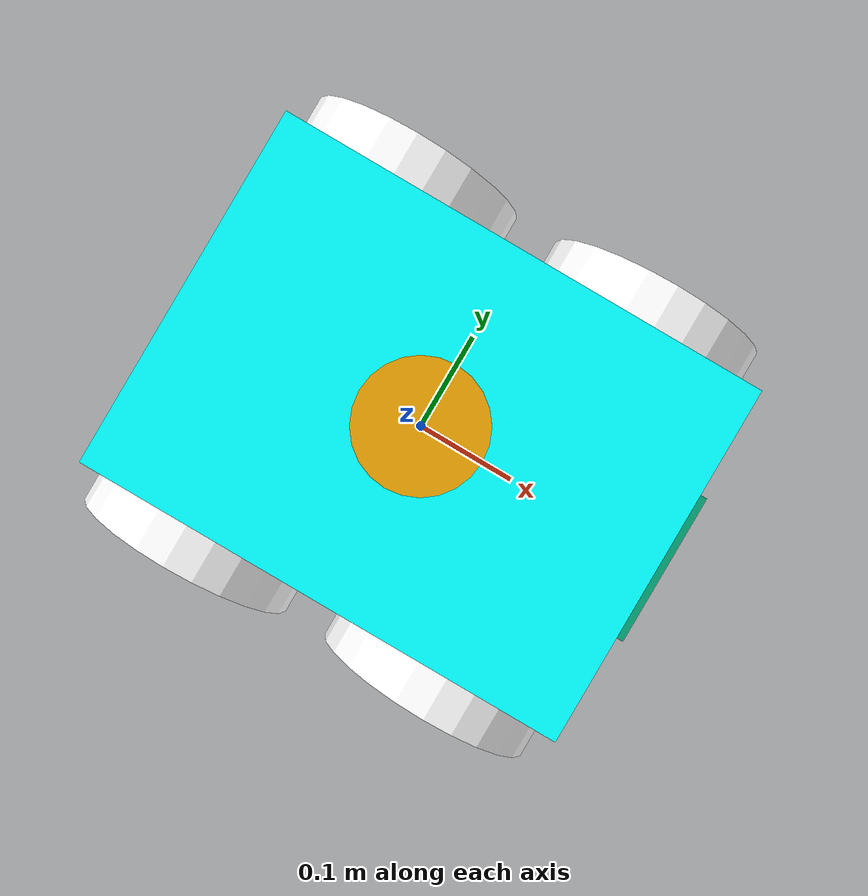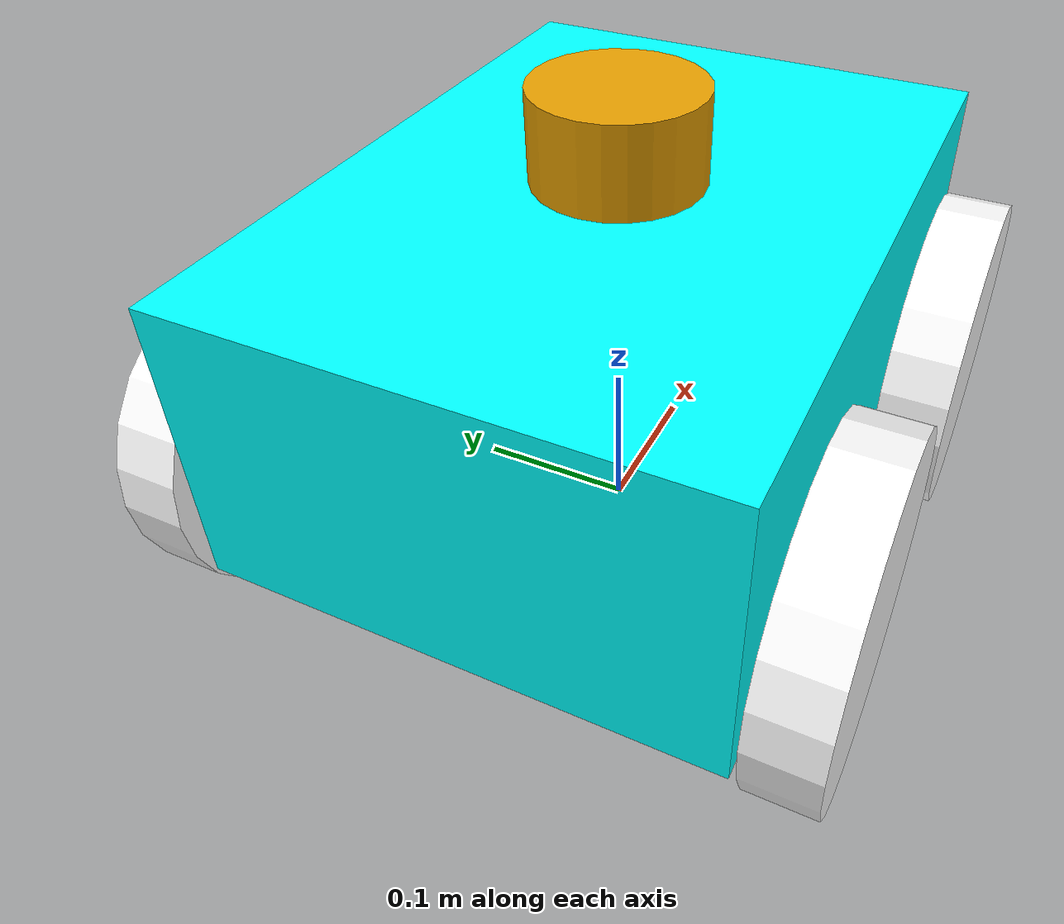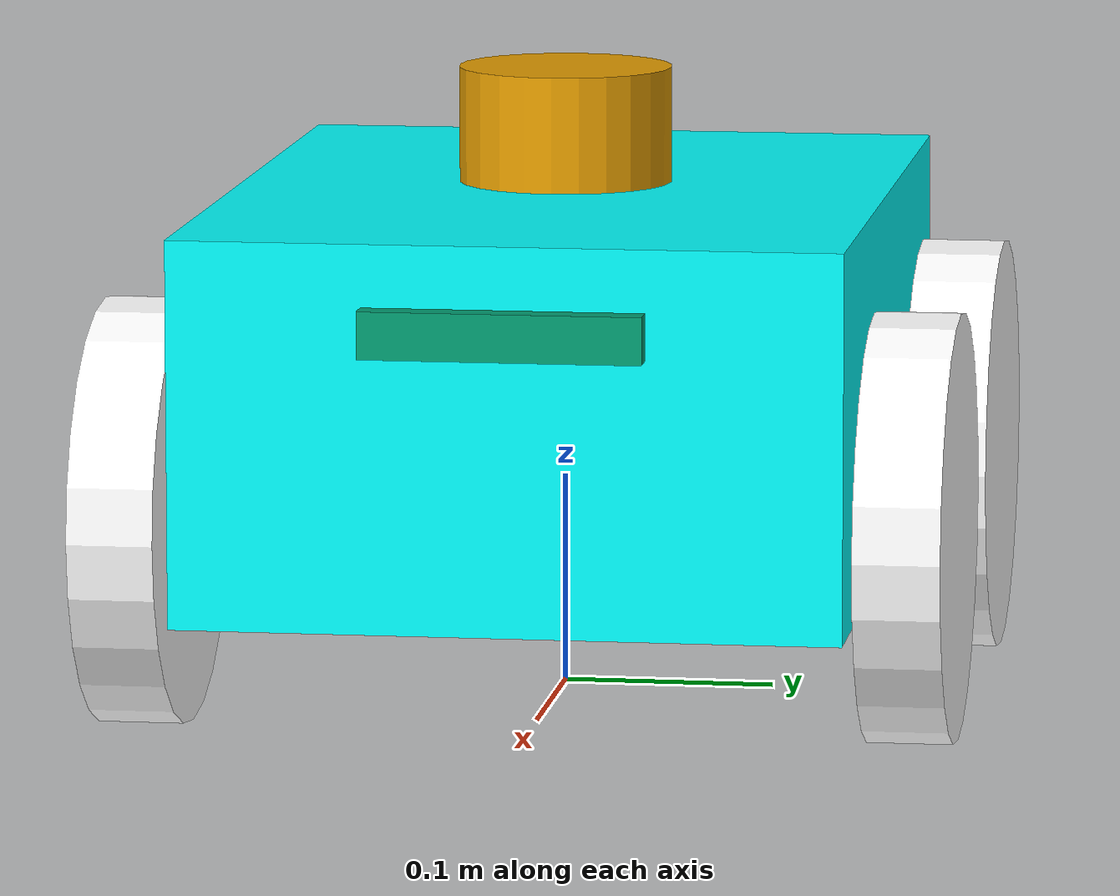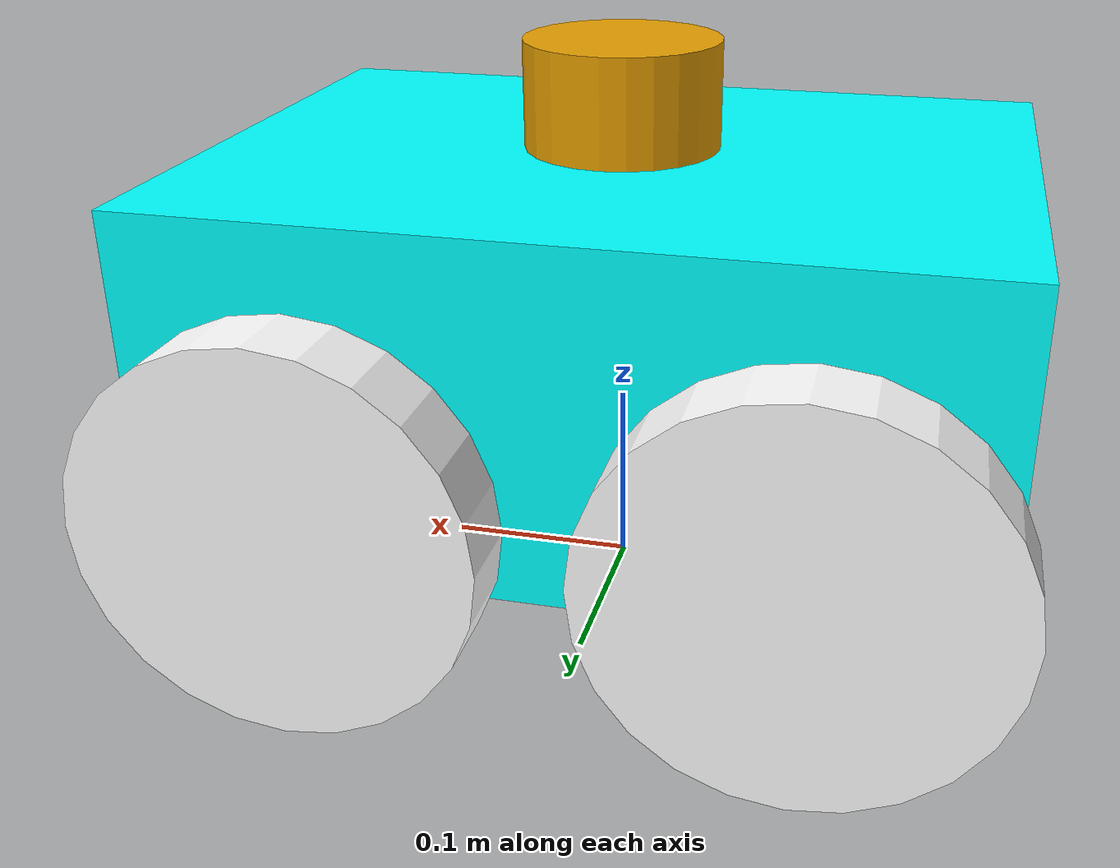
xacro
<?xml version="1.0"?>
<robot xmlns:xacro="http://ros.org/wiki/xacro" name="junki_acker">

    <xacro:include filename="robot_core.xacro" />
    <xacro:include filename="laser.xacro" />
    <xacro:include filename="gazebo_control.xacro" />
    <xacro:include filename="imu.xacro" />
    <xacro:include filename="camera.xacro" />

</robot>

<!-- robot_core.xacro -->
<robot xmlns:xacro="http://www.ros.org/wiki/xacro">

  <!-- Robotaren balio konstanteak -->
  <xacro:property name="oinarri_zabalera" value="0.31"/>
  <xacro:property name="oinarri_luzera" value="0.42"/>
  <xacro:property name="oinarri_altuera" value="0.18"/>

  <xacro:property name="gurpil_erradioa" value="0.10"/>
  <xacro:property name="gurpil_zabalera" value="0.04"/>
  <xacro:property name="wheel_ygap" value="0.025"/>
  <xacro:property name="wheel_zoff" value="0.05"/>
  <xacro:property name="wheel_xoff" value="0.12"/>

  <xacro:property name="gurpil_marruskadura" value="0.8"/>

  <!-- Definitu propietate inertzialak  -->
  <xacro:macro name="kutxa_inerzia" params="m w h d">
    <inertial>
      <origin xyz="0 0 0" rpy="${pi/2} 0 ${pi/2}"/>
      <mass value="${m}"/>
      <inertia ixx="${(m/12) * (h*h + d*d)}" ixy="0.0" ixz="0.0" iyy="${(m/12) * (w*w + d*d)}" iyz="0.0" izz="${(m/12) * (w*w + h*h)}"/>
    </inertial>
  </xacro:macro>

  <xacro:macro name="zilindro_inertzia" params="m r h">
    <inertial>
      <origin xyz="0 0 0" rpy="${pi/2} 0 0" />
      <mass value="${m}"/>
      <inertia ixx="${(m/12) * (3*r*r + h*h)}" ixy = "0" ixz = "0" iyy="${(m/12) * (3*r*r + h*h)}" iyz = "0" izz="${(m/2) * (r*r)}"/>
    </inertial>
  </xacro:macro>

  <!-- Robotaren basea -->
  <link name="base_link">
    <visual>
      <geometry>
        <box size="${oinarri_luzera} ${oinarri_zabalera} ${oinarri_altuera}"/>
      </geometry>
      <material name="Cyan">
        <color rgba="0 1.0 1.0 1.0"/>
      </material>
    </visual>
    <collision>
      <geometry>
        <box size="${oinarri_luzera} ${oinarri_zabalera} ${oinarri_altuera}"/>
      </geometry>
    </collision>

    <xacro:kutxa_inerzia m="15" w="${oinarri_zabalera}" d="${oinarri_luzera}" h="${oinarri_altuera}"/>
  </link>

  <!-- Robotaren Footprinta (itzala) -->
  <link name="base_footprint"/>

  <joint name="base_joint" type="fixed">
    <parent link="base_footprint"/>
    <child link="base_link"/>
    <origin xyz="0.0 0.0 ${(gurpil_erradioa+wheel_zoff)}" rpy="0 0 0"/>
  </joint>

  <!-- Atzeko gurpilak -->
  <!-- Ez dira ackermanak -->
  <xacro:macro name="Atzeko_gurpilak" params="aurrizkia x_norantza y_norantza">
    <link name="${aurrizkia}_link">
      <visual>
        <origin xyz="0 0 0" rpy="${pi/2} 0 0"/>
        <geometry>
            <cylinder radius="${gurpil_erradioa}" length="${gurpil_zabalera}"/>
        </geometry>
        <material name="txuria">
          <color rgba="1 1 1 1"/>
        </material>
      </visual>

      <collision>
        <origin xyz="0 0 0" rpy="${pi/2} 0 0"/>
        <geometry>
          <cylinder radius="${gurpil_erradioa}" length="${gurpil_zabalera}"/>
        </geometry>
      </collision>

      <xacro:zilindro_inertzia m="0.5" r="${gurpil_erradioa}" h="${gurpil_zabalera}"/>
    </link>
    <joint name="${aurrizkia}_joint" type="continuous">
      <parent link="base_link"/>
      <child link="${aurrizkia}_link"/>
      <origin xyz="${x_norantza*wheel_xoff} ${y_norantza*(oinarri_zabalera/2+wheel_ygap)} ${-wheel_zoff}" rpy="0 0 0"/>
      <axis xyz="0 1 0"/>
    </joint>
  </xacro:macro>

  <xacro:Atzeko_gurpilak aurrizkia="atzekoezk_gurp" x_norantza="-1" y_norantza="1" />
  <xacro:Atzeko_gurpilak aurrizkia="atzekoesk_gurp" x_norantza="-1" y_norantza="-1" />

  <!-- Aurreko gurpilak -->
  <!-- Ackermann-ak-->
  <xacro:macro name="Aurreko_gurpila" params="aurrizkia2 x_norantza2 y_norantza2">
    <link name="${aurrizkia2}_link">
      <visual>
        <origin xyz="0 0 0" rpy="${pi/2} 0 0"/>
        <geometry>
            <cylinder radius="${gurpil_erradioa}" length="${gurpil_zabalera}"/>
        </geometry>
        <material name="txuria">
          <color rgba="1 1 1 1"/>
        </material>
      </visual>

      <collision>
        <origin xyz="0 0 0" rpy="${pi/2} 0 0"/>
        <geometry>
          <cylinder radius="${gurpil_erradioa}" length="${gurpil_zabalera}"/>
        </geometry>
      </collision>

      <xacro:zilindro_inertzia m="0.5" r="${gurpil_erradioa}" h="${gurpil_zabalera}"/>
    </link>

  </xacro:macro>

  <xacro:Aurreko_gurpila aurrizkia2="aurrekoezk_gurp" x_norantza2="1" y_norantza2="1" />
  <xacro:Aurreko_gurpila aurrizkia2="aurrekoesk_gurp" x_norantza2="1" y_norantza2="-1" />

  <joint name="aurrekoezk_gurp_joint" type="continuous">
    <parent link="aurrekoezk_gurp_steer"/>
    <child link="aurrekoezk_gurp_link"/>
    <origin xyz="0 0 0" rpy="0 0 0"/>
    <axis xyz="0 1 0"/>
  </joint>
  <joint name="aurrekoesk_gurp_joint" type="continuous">
    <parent link="aurrekoesk_gurp_steer"/>
    <child link="aurrekoesk_gurp_link"/>
    <origin xyz="0 0 0" rpy="0 0 0"/>
    <axis xyz="0 1 0"/>
  </joint>

  <link name="aurrekoezk_gurp_steer">
    <visual>
      <geometry>
        <cylinder length="0.01" radius="0.01"/>
      </geometry>
      <material name="black">
        <color rgba="0 0 0 1"/>
      </material>
    </visual>
    <collision>
      <geometry>
        <cylinder length="0.01" radius="0.01"/>
      </geometry>
    </collision>
    <inertial>
      <mass value="0.1"/>
      <inertia ixx="5.1458e-5" iyy="5.1458e-5" izz="6.125e-5"
               ixy="0" ixz="0" iyz="0"/>
    </inertial>
  </link>

  <link name="aurrekoesk_gurp_steer">
    <visual>
      <geometry>
        <cylinder length="0.01" radius="0.01"/>
      </geometry>
      <material name="black">
        <color rgba="0 0 0 1"/>
      </material>
    </visual>
    <collision>
      <geometry>
        <cylinder length="0.01" radius="0.01"/>
      </geometry>
    </collision>
    <inertial>
      <mass value="0.1"/>
      <inertia ixx="5.1458e-5" iyy="5.1458e-5" izz="6.125e-5"
               ixy="0" ixz="0" iyz="0"/>
    </inertial>
  </link>

  <joint name="aurrekoezk_gurp_steer_joint" type="revolute">
    <limit lower="-1" upper="1" effort="1" velocity="5"/>
    <axis xyz="0 0 1"/>
    <parent link="base_link"/>
    <child link="aurrekoezk_gurp_steer"/>
    <origin xyz="${wheel_xoff} ${(oinarri_zabalera/2+wheel_ygap)} ${-wheel_zoff}" rpy="0 0 0"/>
  </joint>

  <joint name="aurrekoesk_gurp_steer_joint" type="revolute">
    <limit lower="-1" upper="1" effort="1" velocity="5"/>
    <axis xyz="0 0 1"/>
    <parent link="base_link"/>
    <child link="aurrekoesk_gurp_steer"/>
    <origin xyz="${wheel_xoff} ${-1*(oinarri_zabalera/2+wheel_ygap)} ${-wheel_zoff}" rpy="0 0 0"/>
  </joint>

</robot>

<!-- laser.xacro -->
<robot xmlns:xacro="http://www.ros.org/wiki/xacro">

    <link name="lidar_link">
        <inertial>
            <origin xyz="0 0 0" rpy="0 0 0"/>
            <mass value="0.125"/>
            <inertia ixx="0.001"  ixy="0"  ixz="0" iyy="0.001" iyz="0" izz="0.001" />
        </inertial>

        <collision>
            <origin xyz="0 0 0" rpy="0 0 0"/>
            <geometry>
            <cylinder radius="0.0508" length="0.055"/>
            </geometry>
        </collision>

        <visual>
            <origin xyz="0 0 0" rpy="0 0 0"/>
            <geometry>
            <cylinder radius="0.0508" length="0.055"/>
            </geometry>
        </visual>
    </link>

    <joint name="lidar_joint" type="fixed">
        <parent link="base_link"/>
        <child link="lidar_link"/>
        <origin xyz="0 0 0.12" rpy="0 0 0"/>
    </joint>

    <gazebo reference="lidar_link">
        <sensor name="lidar" type="ray">
            <always_on>true</always_on>
            <visualize>false</visualize>
            <update_rate>3</update_rate>
            <ray>
                <scan>
                    <horizontal>
                        <samples>360</samples>
                        <resolution>1.000000</resolution>
                        <min_angle>${-pi}</min_angle>
                        <max_angle>${pi}</max_angle>
                    </horizontal>
                </scan>
                <range>
                    <min>0.30</min>
                    <max>25.0</max>
                    <resolution>0.1</resolution>
                </range>
                <noise>
                    <type>gaussian</type>
                    <mean>0.0</mean>
                    <stddev>0.01</stddev>
                </noise>
            </ray>
            <plugin name="scan" filename="libgazebo_ros_ray_sensor.so">
                <ros>
                    <remapping>~/out:=scan</remapping>
                </ros>
                <output_type>sensor_msgs/LaserScan</output_type>
                <frame_name>lidar_link</frame_name>
            </plugin>
        </sensor>
    </gazebo>
</robot>

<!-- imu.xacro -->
<robot xmlns:xacro="http://www.ros.org/wiki/xacro">

  <link name="imu_link">
    <visual>
      <geometry>
        <box size="0.1 0.1 0.1"/>
      </geometry>
    </visual>

    <collision>
      <geometry>
        <box size="0.1 0.1 0.1"/>
      </geometry>
    </collision>

    <xacro:kutxa_inerzia m="0.1" w="0.1" d="0.1" h="0.1"/>
  </link>

  <joint name="imu_joint" type="fixed">
    <parent link="base_link"/>
    <child link="imu_link"/>
    <origin xyz="0 0 0.01"/>
  </joint>

  <gazebo reference="imu_link">
    <sensor name="imu_sensor" type="imu">
      <plugin filename="libgazebo_ros_imu_sensor.so" name="imu_plugin">
        <ros>
          <remapping>~/out:=imu</remapping>
        </ros>
        <initial_orientation_as_reference>false</initial_orientation_as_reference>
      </plugin>
      <always_on>true</always_on>
      <update_rate>100</update_rate>
      <visualize>true</visualize>
     <imu>
        <angular_velocity>
          <x>
            <noise type="gaussian">
              <mean>0.0</mean>
              <stddev>2e-4</stddev>
              <bias_mean>0.0000075</bias_mean>
              <bias_stddev>0.0000008</bias_stddev>
            </noise>
          </x>
          <y>
            <noise type="gaussian">
              <mean>0.0</mean>
              <stddev>2e-4</stddev>
              <bias_mean>0.0000075</bias_mean>
              <bias_stddev>0.0000008</bias_stddev>
            </noise>
          </y>
          <z>
            <noise type="gaussian">
              <mean>0.0</mean>
              <stddev>2e-4</stddev>
              <bias_mean>0.0000075</bias_mean>
              <bias_stddev>0.0000008</bias_stddev>
            </noise>
          </z>
        </angular_velocity>
        <linear_acceleration>
          <x>
            <noise type="gaussian">
              <mean>0.0</mean>
              <stddev>1.7e-2</stddev>
              <bias_mean>0.1</bias_mean>
              <bias_stddev>0.001</bias_stddev>
            </noise>
          </x>
          <y>
            <noise type="gaussian">
              <mean>0.0</mean>
              <stddev>1.7e-2</stddev>
              <bias_mean>0.1</bias_mean>
              <bias_stddev>0.001</bias_stddev>
            </noise>
          </y>
          <z>
            <noise type="gaussian">
              <mean>0.0</mean>
              <stddev>1.7e-2</stddev>
              <bias_mean>0.1</bias_mean>
              <bias_stddev>0.001</bias_stddev>
            </noise>
          </z>
        </linear_acceleration>
      </imu>
    </sensor>
  </gazebo>
</robot>

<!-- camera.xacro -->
<robot xmlns:xacro="http://www.ros.org/wiki/xacro">

    <link name="camera_link">
        <visual>
            <origin xyz="0 0 0" rpy="0 0 0"/>
            <geometry>
                <box size="0.015 0.130 0.022"/>
            </geometry>
        </visual>

        <collision>
            <origin xyz="0 0 0" rpy="0 0 0"/>
            <geometry>
                <box size="0.015 0.130 0.022"/>
            </geometry>
        </collision>

        <inertial>
            <origin xyz="0 0 0" rpy="0 0 0"/>
            <mass value="0.035"/>
            <inertia ixx="0.001"  ixy="0"  ixz="0" iyy="0.001" iyz="0" izz="0.001" />
        </inertial>
    </link>

    <joint name="camera_joint" type="fixed">
        <parent link="base_link"/>
        <child link="camera_link"/>
        <origin xyz="0.215 0 0.05" rpy="0 0 0"/>
    </joint>

    <link name="camera_depth_frame"/>

    <joint name="camera_depth_joint" type="fixed">
        <origin xyz="0 0 0" rpy="${-pi/2} 0 ${-pi/2}"/>
        <parent link="camera_link"/>
        <child link="camera_depth_frame"/>
    </joint>

    <gazebo reference="camera_link">
        <sensor name="intel_realsense_r200_depth" type="depth">
            <visualize>true</visualize>
            <update_rate>30.0</update_rate>
            <camera name="camera">
                <horizontal_fov>1.047198</horizontal_fov>
                <image>
                    <width>640</width>
                    <height>480</height>
                    <format>R8G8B8</format>
                </image>
                <clip>
                    <near>0.05</near>
                    <far>3</far>
                </clip>
            </camera>
            <plugin name="depth_camera_controller" filename="libgazebo_ros_camera.so">
                <baseline>0.2</baseline>
                <alwaysOn>true</alwaysOn>
                <updateRate>0.0</updateRate>
                <frame_name>camera_depth_frame</frame_name>
                <pointCloudCutoff>0.5</pointCloudCutoff>
                <pointCloudCutoffMax>3.0</pointCloudCutoffMax>
                <distortionK1>0</distortionK1>
                <distortionK2>0</distortionK2>
                <distortionK3>0</distortionK3>
                <distortionT1>0</distortionT1>
                <distortionT2>0</distortionT2>
                <CxPrime>0</CxPrime>
                <Cx>0</Cx>
                <Cy>0</Cy>
                <focalLength>0</focalLength>
                <hackBaseline>0</hackBaseline>
            </plugin>
        </sensor>
    </gazebo>

</robot>
